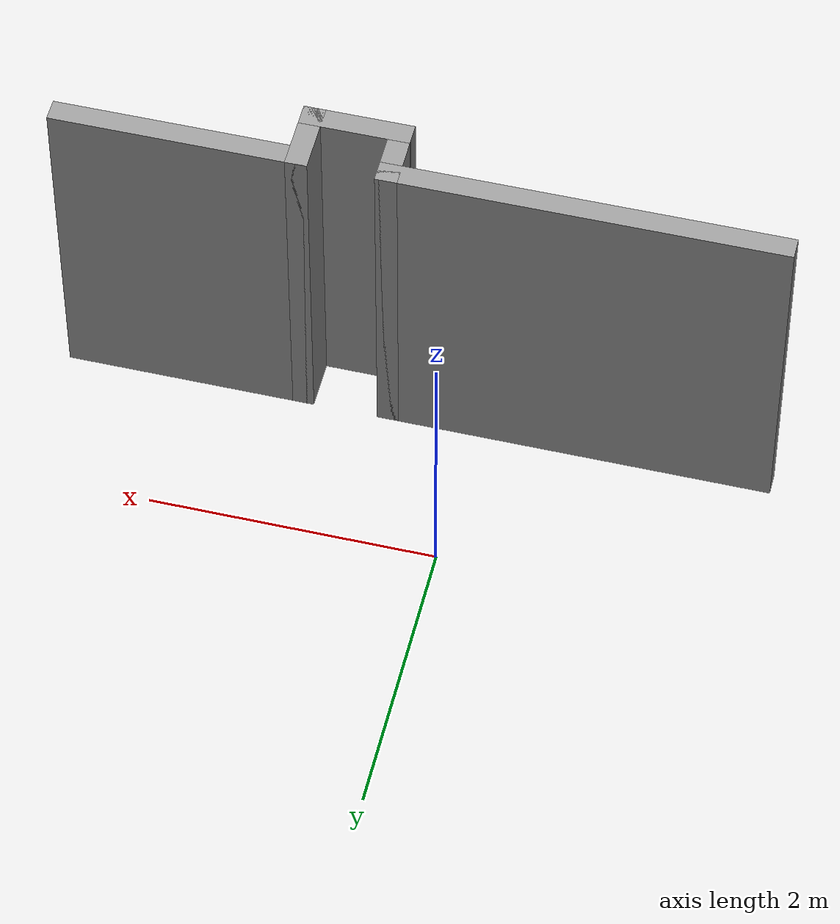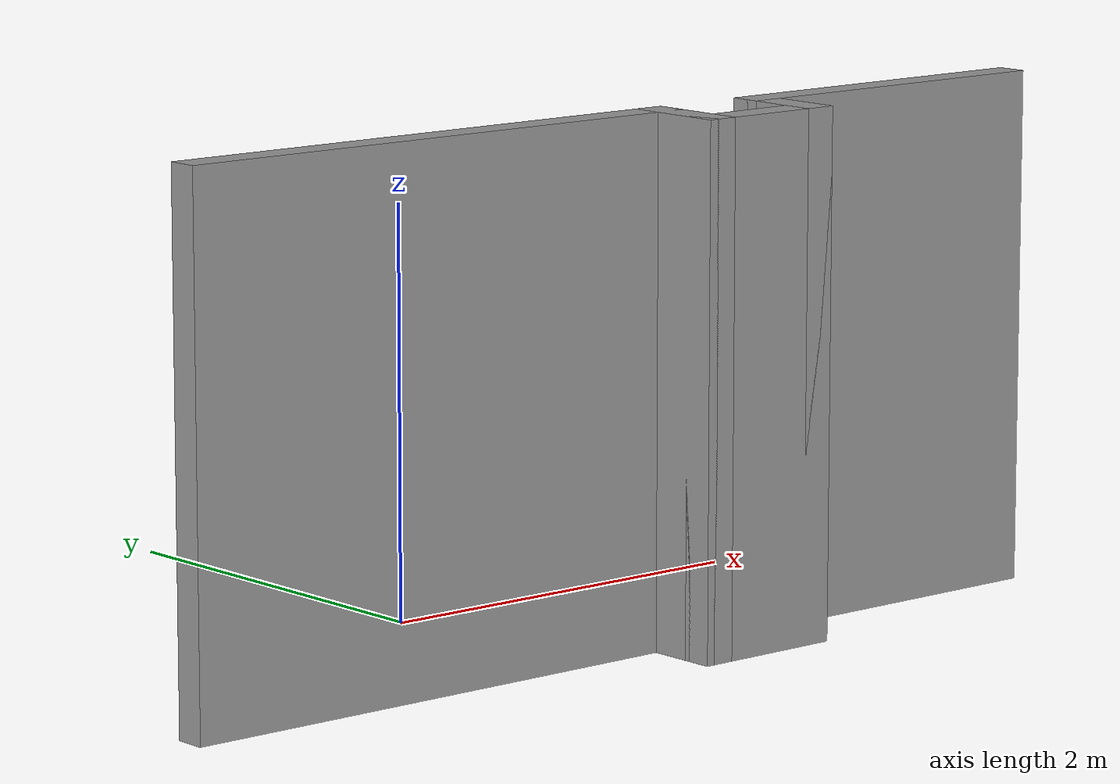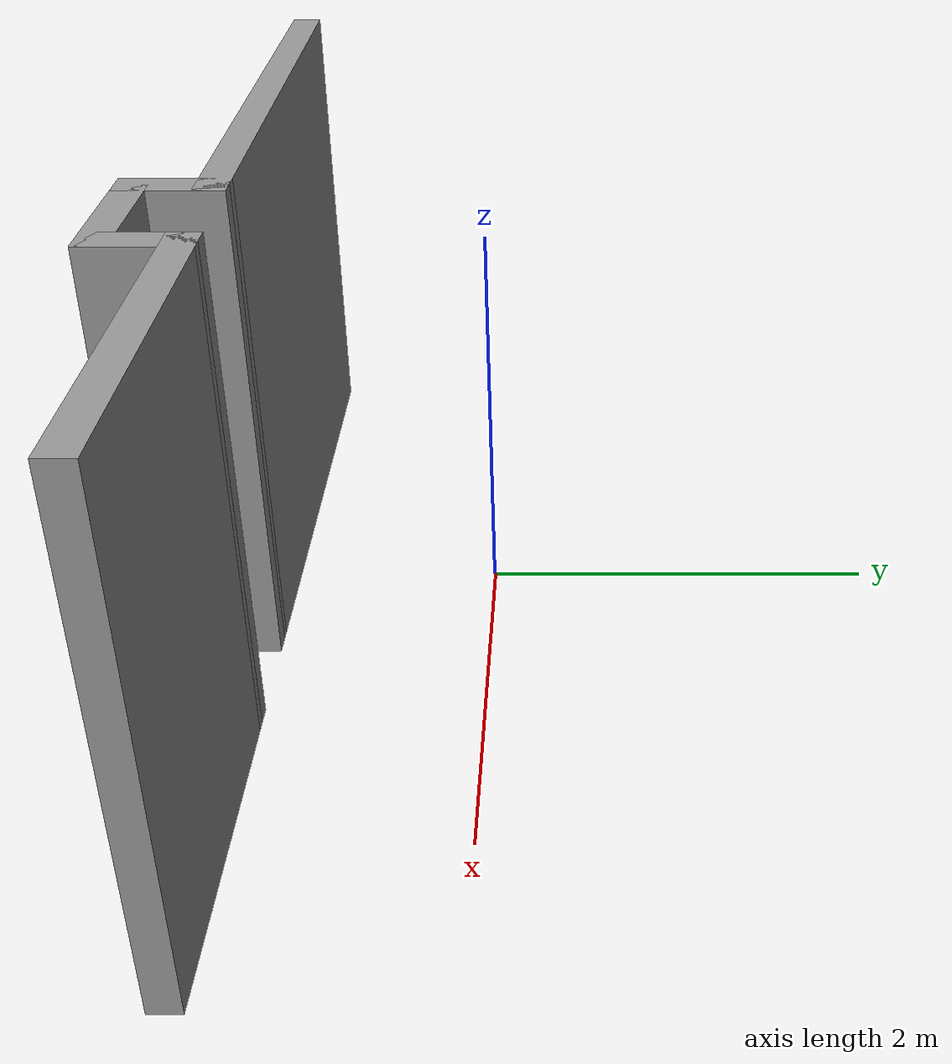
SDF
<?xml version='1.0'?>
<sdf version='1.7'>
  <model name='wall_park'>
    <pose>0.4 -0.7825 0 0 -0 0</pose>
    <link name='Wall_13'>
      <collision name='Wall_13_Collision'>
        <geometry>
          <box>
            <size>2.75 0.15 2.5</size>
          </box>
        </geometry>
        <pose>0 0 1.25 0 -0 0</pose>
      </collision>
      <visual name='Wall_13_Visual'>
        <pose>0 0 1.25 0 -0 0</pose>
        <geometry>
          <box>
            <size>2.75 0.15 2.5</size>
          </box>
        </geometry>
        <material>
          <script>
            <uri>file://media/materials/scripts/gazebo.material</uri>
            <name>Gazebo/Grey</name>
          </script>
          <ambient>1 1 1 1</ambient>
        </material>
        <meta>
          <layer>0</layer>
        </meta>
      </visual>
      <pose>-1.1 -0.3575 0 0 -0 0</pose>
    </link>
    <link name='Wall_14'>
      <collision name='Wall_14_Collision'>
        <geometry>
          <box>
            <size>0.5 0.15 2.5</size>
          </box>
        </geometry>
        <pose>0 0 1.25 0 -0 0</pose>
      </collision>
      <visual name='Wall_14_Visual'>
        <pose>0 0 1.25 0 -0 0</pose>
        <geometry>
          <box>
            <size>0.5 0.15 2.5</size>
          </box>
        </geometry>
        <material>
          <script>
            <uri>file://media/materials/scripts/gazebo.material</uri>
            <name>Gazebo/Grey</name>
          </script>
          <ambient>1 1 1 1</ambient>
        </material>
        <meta>
          <layer>0</layer>
        </meta>
      </visual>
      <pose>0.2 -0.5325 0 0 -0 -1.5708</pose>
    </link>
    <link name='Wall_15'>
      <collision name='Wall_15_Collision'>
        <geometry>
          <box>
            <size>0.75 0.15 2.5</size>
          </box>
        </geometry>
        <pose>0 0 1.25 0 -0 0</pose>
      </collision>
      <visual name='Wall_15_Visual'>
        <pose>0 0 1.25 0 -0 0</pose>
        <geometry>
          <box>
            <size>0.75 0.15 2.5</size>
          </box>
        </geometry>
        <material>
          <script>
            <uri>file://media/materials/scripts/gazebo.material</uri>
            <name>Gazebo/Grey</name>
          </script>
          <ambient>1 1 1 1</ambient>
        </material>
        <meta>
          <layer>0</layer>
        </meta>
      </visual>
      <pose>0.5 -0.7075 0 0 -0 0</pose>
    </link>
    <link name='Wall_16'>
      <collision name='Wall_16_Collision'>
        <geometry>
          <box>
            <size>0.5 0.15 2.5</size>
          </box>
        </geometry>
        <pose>0 0 1.25 0 -0 0</pose>
      </collision>
      <visual name='Wall_16_Visual'>
        <pose>0 0 1.25 0 -0 0</pose>
        <geometry>
          <box>
            <size>0.5 0.15 2.5</size>
          </box>
        </geometry>
        <material>
          <script>
            <uri>file://media/materials/scripts/gazebo.material</uri>
            <name>Gazebo/Grey</name>
          </script>
          <ambient>1 1 1 1</ambient>
        </material>
        <meta>
          <layer>0</layer>
        </meta>
      </visual>
      <pose>0.8 -0.5325 0 0 -0 1.5708</pose>
    </link>
    <link name='Wall_17'>
      <collision name='Wall_17_Collision'>
        <geometry>
          <box>
            <size>1.75 0.15 2.5</size>
          </box>
        </geometry>
        <pose>0 0 1.25 0 -0 0</pose>
      </collision>
      <visual name='Wall_17_Visual'>
        <pose>0 0 1.25 0 -0 0</pose>
        <geometry>
          <box>
            <size>1.75 0.15 2.5</size>
          </box>
        </geometry>
        <material>
          <script>
            <uri>file://media/materials/scripts/gazebo.material</uri>
            <name>Gazebo/Grey</name>
          </script>
          <ambient>1 1 1 1</ambient>
        </material>
        <meta>
          <layer>0</layer>
        </meta>
      </visual>
      <pose>1.6 -0.3575 0 0 -0 0</pose>
    </link>
    <static>1</static>
  </model>
</sdf>
